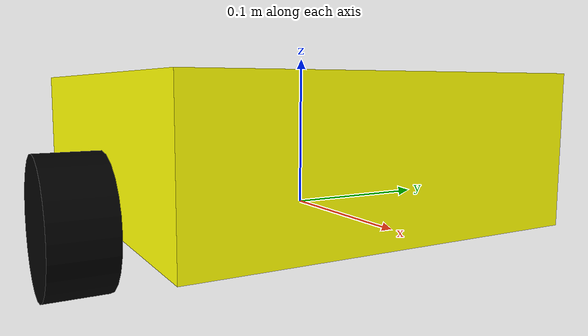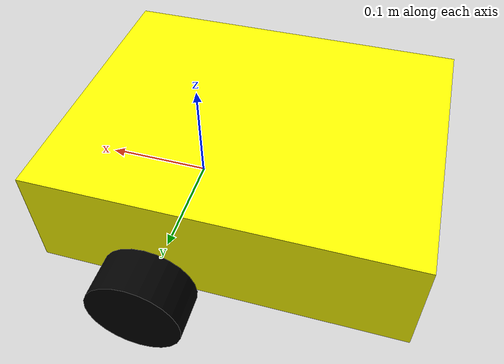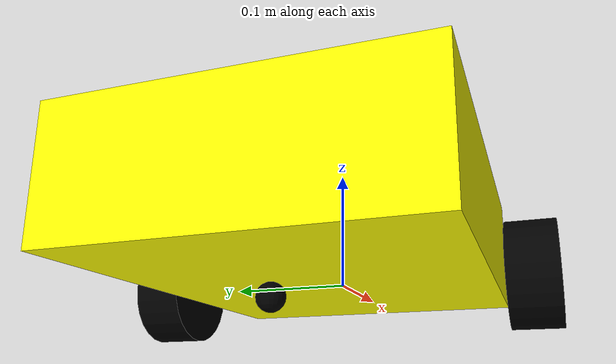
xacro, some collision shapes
<?xml version="1.0"?>
<robot xmlns:xacro="http://www.ros.org/wiki/xacro">

    <!-- ================== INCLUDES ================== -->
    <xacro:include filename="inertial_macros.xacro"/>

    <!-- ================== PROPERTIES ================== -->
    <xacro:property name="chassis_length" value="0.335"/>
    <xacro:property name="chassis_width" value="0.265"/>
    <xacro:property name="chassis_height" value="0"/>
    <xacro:property name="chassis_mass" value="1.0"/>

    <xacro:property name="wheel_radius" value="0.0435"/>
    <xacro:property name="wheel_thickness" value="0.04"/>
    <xacro:property name="wheel_mass" value="0.05"/>
    <xacro:property name="wheel_offset_x" value="0.226"/>
    <!-- measured on the real chassis 2026-07-07: 32cm track -->
    <xacro:property name="wheel_offset_y" value="0.16"/>
    <xacro:property name="wheel_offset_z" value="0.01"/>

    <xacro:property name="caster_wheel_radius" value="0.01"/>
    <xacro:property name="caster_wheel_mass" value="0.01"/>
    <xacro:property name="caster_wheel_offset_x" value="0.075"/>
    <xacro:property name="caster_wheel_offset_z"
                     value="${wheel_offset_z - wheel_radius + caster_wheel_radius}"/>

    <!-- ================== MATERIALS ================== -->
    <material name="black">
        <color rgba="0 0 0 1"/>
    </material>

    <material name="yellow">
        <color rgba="1 1 0 1"/>
    </material>

    <!-- ================== BASE LINK ================== -->
    <link name="base_link"/>

    <!-- ================== BASE FOOTPRINT ================== -->
    <joint name="base_footprint_joint" type="fixed">
        <parent link="base_link"/>
        <child link="base_footprint"/>
        <origin xyz="0 0 0" rpy="0 0 0"/>
    </joint>

    <link name="base_footprint"/>

    <!-- ================== CHASSIS ================== -->
    <joint name="chassis_joint" type="fixed">
        <parent link="base_link"/>
        <child link="chassis"/>
        <origin xyz="${-wheel_offset_x} 0 ${-wheel_offset_z}"/>
    </joint>

    <link name="chassis">
        <visual>
            <origin xyz="${chassis_length/2} 0 ${chassis_height/2}"/>
            <geometry>
                <mesh filename="package://yoru_base/meshes/body_bot.stl"
                      scale="0.001 0.001 0.001"/>
            </geometry>
            <material name="yellow"/>
        </visual>

        <!-- Collision is a simple box (not the decorative mesh) because
             Gazebo/ODE trimesh contacts are unreliable and let the robot
             push through walls. Box-vs-box contacts are solid. -->
        <collision>
            <origin xyz="${chassis_length/2} 0 0.05"/>
            <geometry>
                <box size="${chassis_length} ${chassis_width} 0.1"/>
            </geometry>
        </collision>

        <xacro:inertial_box mass="0.5"
                            x="${chassis_length}"
                            y="${chassis_width}"
                            z="${chassis_height}">
            <origin xyz="${chassis_length/2} 0 ${chassis_height/2}"
                    rpy="0 0 0"/>
        </xacro:inertial_box>
    </link>

    <gazebo reference="chassis">
        <material>Gazebo/Yellow</material>
    </gazebo>

    <!-- ================== LEFT WHEEL ================== -->
    <joint name="left_wheel_joint" type="continuous">
        <parent link="base_link"/>
        <child link="left_wheel"/>
        <origin xyz="0 ${wheel_offset_y} 0"
                rpy="-${pi/2} 0 0"/>
        <axis xyz="0 0 1"/>
    </joint>

    <link name="left_wheel">
        <visual>
            <geometry>
                <cylinder radius="${wheel_radius}"
                          length="${wheel_thickness}"/>
            </geometry>
            <material name="black"/>
        </visual>

        <collision>
            <geometry>
                <sphere radius="${wheel_radius}"/>
            </geometry>
        </collision>

        <xacro:inertial_cylinder mass="${wheel_mass}"
                                 length="${wheel_thickness}"
                                 radius="${wheel_radius}">
            <origin xyz="0 0 0" rpy="0 0 0"/>
        </xacro:inertial_cylinder>
    </link>

    <gazebo reference="left_wheel">
        <material>Gazebo/Black</material>
    </gazebo>

    <!-- ================== RIGHT WHEEL ================== -->
    <joint name="right_wheel_joint" type="continuous">
        <parent link="base_link"/>
        <child link="right_wheel"/>
        <origin xyz="0 ${-wheel_offset_y} 0"
                rpy="${pi/2} 0 0"/>
        <axis xyz="0 0 -1"/>
    </joint>

    <link name="right_wheel">
        <visual>
            <geometry>
                <cylinder radius="${wheel_radius}"
                          length="${wheel_thickness}"/>
            </geometry>
            <material name="black"/>
        </visual>

        <collision>
            <geometry>
                <sphere radius="${wheel_radius}"/>
            </geometry>
        </collision>

        <xacro:inertial_cylinder mass="${wheel_mass}"
                                 length="${wheel_thickness}"
                                 radius="${wheel_radius}">
            <origin xyz="0 0 0" rpy="0 0 0"/>
        </xacro:inertial_cylinder>
    </link>

    <gazebo reference="right_wheel">
        <material>Gazebo/Black</material>
    </gazebo>

    <!-- ================== CASTER WHEEL ================== -->
    <joint name="caster_wheel_joint" type="fixed">
        <parent link="chassis"/>
        <child link="caster_wheel"/>
        <origin xyz="${caster_wheel_offset_x} 0 ${caster_wheel_offset_z}"/>
    </joint>

    <link name="caster_wheel">
        <visual>
            <geometry>
                <sphere radius="${caster_wheel_radius}"/>
            </geometry>
            <material name="black"/>
        </visual>

        <collision>
            <geometry>
                <sphere radius="${caster_wheel_radius}"/>
            </geometry>
        </collision>

        <xacro:inertial_sphere mass="${caster_wheel_mass}"
                               radius="${caster_wheel_radius}">
            <origin xyz="0 0 0" rpy="0 0 0"/>
        </xacro:inertial_sphere>
    </link>

    <gazebo reference="caster_wheel">
        <material>Gazebo/Black</material>
        <mu1 value="0.001"/>
        <mu2 value="0.001"/>
    </gazebo>

</robot>
